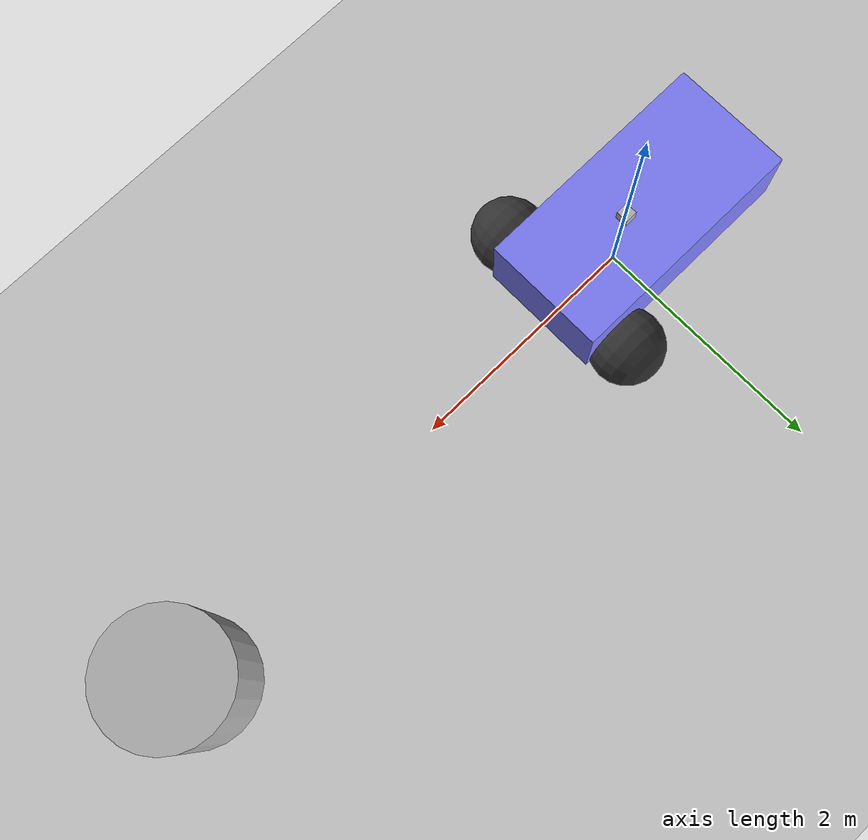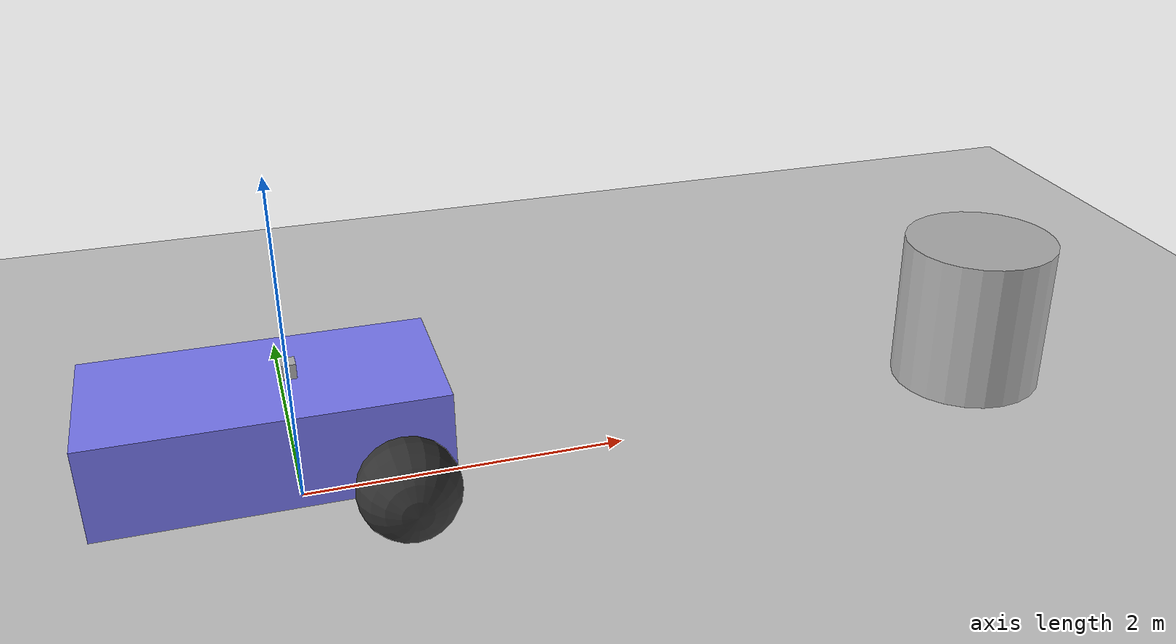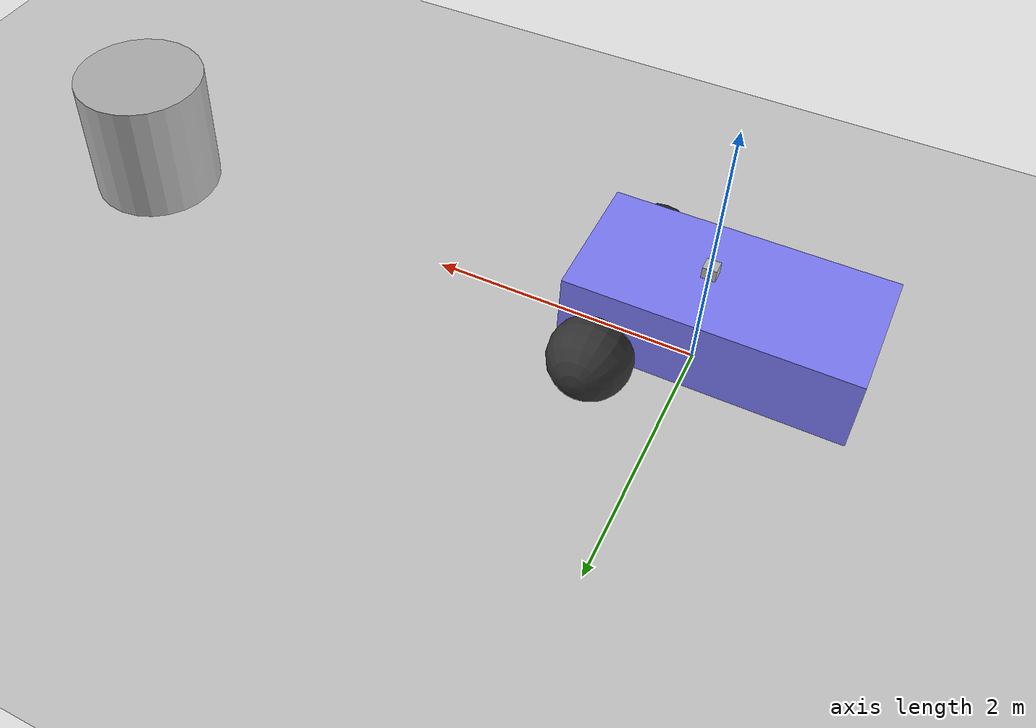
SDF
<sdf version='1.10'>
  <world name='demo'>
    <plugin name='gz::sim::systems::Physics' filename='gz-sim-physics-system'/>
    <plugin name='gz::sim::systems::Sensors' filename='gz-sim-sensors-system'>
      <render_engine>ogre2</render_engine>
    </plugin>
    <plugin name='gz::sim::systems::SceneBroadcaster' filename='gz-sim-scene-broadcaster-system'/>
    <plugin name='gz::sim::systems::UserCommands' filename='gz-sim-user-commands-system'/>
    <plugin name='ros_gz_example_gazebo::BasicSystem' filename='BasicSystem'/>
    <plugin name='ros_gz_example_gazebo::FullSystem' filename='FullSystem'/>
    <gravity>0 0 -9.8000000000000007</gravity>
    <magnetic_field>5.5644999999999998e-06 2.2875799999999999e-05 -4.2388400000000002e-05</magnetic_field>
    <atmosphere type='adiabatic'/>
    <physics type='ode'>
      <max_step_size>0.001</max_step_size>
      <real_time_factor>1</real_time_factor>
      <real_time_update_rate>1000</real_time_update_rate>
    </physics>
    <scene>
      <ambient>0.400000006 0.400000006 0.400000006 1</ambient>
      <background>0.699999988 0.699999988 0.699999988 1</background>
      <shadows>true</shadows>
    </scene>
    <model name='ground_plane'>
      <static>true</static>
      <link name='link'>
        <collision name='collision'>
          <geometry>
            <plane>
              <normal>0 0 1</normal>
              <size>100 100</size>
            </plane>
          </geometry>
          <surface>
            <friction>
              <ode/>
            </friction>
            <bounce/>
            <contact/>
          </surface>
        </collision>
        <visual name='visual'>
          <geometry>
            <plane>
              <normal>0 0 1</normal>
              <size>100 100</size>
            </plane>
          </geometry>
          <material>
            <ambient>0.800000012 0.800000012 0.800000012 1</ambient>
            <diffuse>0.800000012 0.800000012 0.800000012 1</diffuse>
            <specular>0.800000012 0.800000012 0.800000012 1</specular>
          </material>
        </visual>
        <pose>0 0 0 0 0 0</pose>
        <inertial>
          <pose>0 0 0 0 0 0</pose>
          <mass>1</mass>
          <inertia>
            <ixx>1</ixx>
            <ixy>0</ixy>
            <ixz>0</ixz>
            <iyy>1</iyy>
            <iyz>0</iyz>
            <izz>1</izz>
          </inertia>
        </inertial>
        <enable_wind>false</enable_wind>
      </link>
      <pose>0 0 0 0 0 0</pose>
      <self_collide>false</self_collide>
    </model>
    <model name='diff_drive'>
      <self_collide>true</self_collide>
      <pose>0 0 0.34999999999999992 0 0 0</pose>
      <frame name='_merged__diff_drive__model__' attached_to='chassis'>
        <pose relative_to='__model__'>0 0 0 0 0 0</pose>
      </frame>
      <link name='chassis'>
        <pose>-0.15142700000000001 0 0.17499999999999999 0 0 0</pose>
        <inertial>
          <mass>1.14395</mass>
          <inertia>
            <ixx>0.126164</ixx>
            <ixy>0</ixy>
            <ixz>0</ixz>
            <iyy>0.41651899999999997</iyy>
            <iyz>0</iyz>
            <izz>0.481014</izz>
          </inertia>
          <pose>0 0 0 0 0 0</pose>
        </inertial>
        <visual name='visual_chassis'>
          <geometry>
            <box>
              <size>2.0114200000000002 1 0.56872599999999995</size>
            </box>
          </geometry>
          <material>
            <ambient>0.5 0.5 1 1</ambient>
            <diffuse>0.5 0.5 1 1</diffuse>
            <specular>0 0 1 1</specular>
          </material>
        </visual>
        <collision name='collision_chassis'>
          <geometry>
            <box>
              <size>2.0114200000000002 1 0.56872599999999995</size>
            </box>
          </geometry>
          <surface>
            <friction>
              <ode/>
            </friction>
            <bounce/>
            <contact/>
          </surface>
        </collision>
        <enable_wind>false</enable_wind>
      </link>
      <link name='left_wheel'>
        <pose>0.55428299999999997 0.62502899999999995 -0.024999999999999967 -1.5706999999999995 0 0</pose>
        <inertial>
          <mass>2</mass>
          <inertia>
            <ixx>0.14583299999999999</ixx>
            <ixy>0</ixy>
            <ixz>0</ixz>
            <iyy>0.14583299999999999</iyy>
            <iyz>0</iyz>
            <izz>0.125</izz>
          </inertia>
          <pose>0 0 0 0 0 0</pose>
        </inertial>
        <visual name='visual_left_wheel'>
          <geometry>
            <sphere>
              <radius>0.29999999999999999</radius>
            </sphere>
          </geometry>
          <material>
            <ambient>0.200000003 0.200000003 0.200000003 1</ambient>
            <diffuse>0.200000003 0.200000003 0.200000003 1</diffuse>
            <specular>0.200000003 0.200000003 0.200000003 1</specular>
          </material>
        </visual>
        <collision name='collision_left_wheel'>
          <geometry>
            <sphere>
              <radius>0.29999999999999999</radius>
            </sphere>
          </geometry>
          <surface>
            <friction>
              <ode/>
            </friction>
            <bounce/>
            <contact/>
          </surface>
        </collision>
        <enable_wind>false</enable_wind>
      </link>
      <link name='right_wheel'>
        <pose>0.55428200000000005 -0.62502899999999995 -0.024999999999999967 -1.5706999999999995 0 0</pose>
        <inertial>
          <mass>2</mass>
          <inertia>
            <ixx>0.14583299999999999</ixx>
            <ixy>0</ixy>
            <ixz>0</ixz>
            <iyy>0.14583299999999999</iyy>
            <iyz>0</iyz>
            <izz>0.125</izz>
          </inertia>
          <pose>0 0 0 0 0 0</pose>
        </inertial>
        <visual name='visual_right_wheel'>
          <geometry>
            <sphere>
              <radius>0.29999999999999999</radius>
            </sphere>
          </geometry>
          <material>
            <ambient>0.200000003 0.200000003 0.200000003 1</ambient>
            <diffuse>0.200000003 0.200000003 0.200000003 1</diffuse>
            <specular>0.200000003 0.200000003 0.200000003 1</specular>
          </material>
        </visual>
        <collision name='collision_right_wheel'>
          <geometry>
            <sphere>
              <radius>0.29999999999999999</radius>
            </sphere>
          </geometry>
          <surface>
            <friction>
              <ode/>
            </friction>
            <bounce/>
            <contact/>
          </surface>
        </collision>
        <enable_wind>false</enable_wind>
      </link>
      <link name='caster'>
        <pose>-0.95713800000000004 0 -0.12499999999999994 0 0 0</pose>
        <inertial>
          <mass>1</mass>
          <inertia>
            <ixx>0.10000000000000001</ixx>
            <ixy>0</ixy>
            <ixz>0</ixz>
            <iyy>0.10000000000000001</iyy>
            <iyz>0</iyz>
            <izz>0.10000000000000001</izz>
          </inertia>
          <pose>0 0 0 0 0 0</pose>
        </inertial>
        <visual name='visual_caster'>
          <geometry>
            <sphere>
              <radius>0.20000000000000001</radius>
            </sphere>
          </geometry>
          <material>
            <ambient>0.200000003 0.200000003 0.200000003 1</ambient>
            <diffuse>0.200000003 0.200000003 0.200000003 1</diffuse>
            <specular>0.200000003 0.200000003 0.200000003 1</specular>
          </material>
        </visual>
        <collision name='collision_caster'>
          <geometry>
            <sphere>
              <radius>0.20000000000000001</radius>
            </sphere>
          </geometry>
          <surface>
            <friction>
              <ode/>
            </friction>
            <bounce/>
            <contact/>
          </surface>
        </collision>
        <enable_wind>false</enable_wind>
      </link>
      <link name='lidar_link'>
        <pose>0 0 0.5 0 0 0</pose>
        <inertial>
          <mass>0.10000000000000001</mass>
          <inertia>
            <ixx>0.00016666700000000001</ixx>
            <iyy>0.00016666700000000001</iyy>
            <izz>0.00016666700000000001</izz>
            <ixy>0</ixy>
            <ixz>0</ixz>
            <iyz>0</iyz>
          </inertia>
          <pose>0 0 0 0 0 0</pose>
        </inertial>
        <collision name='collision'>
          <geometry>
            <box>
              <size>0.10000000000000001 0.10000000000000001 0.10000000000000001</size>
            </box>
          </geometry>
          <surface>
            <friction>
              <ode/>
            </friction>
            <bounce/>
            <contact/>
          </surface>
        </collision>
        <visual name='visual'>
          <geometry>
            <box>
              <size>0.10000000000000001 0.10000000000000001 0.10000000000000001</size>
            </box>
          </geometry>
        </visual>
        <sensor name='gpu_lidar' type='gpu_lidar'>
          <pose>0 0 0 0 0 0</pose>
          <topic>scan</topic>
          <update_rate>10</update_rate>
          <enable_metrics>false</enable_metrics>
          <lidar>
            <scan>
              <horizontal>
                <samples>640</samples>
                <resolution>1</resolution>
                <min_angle>-1.396263</min_angle>
                <max_angle>1.396263</max_angle>
              </horizontal>
              <vertical>
                <samples>1</samples>
                <min_angle>0</min_angle>
                <max_angle>0</max_angle>
                <resolution>1</resolution>
              </vertical>
            </scan>
            <range>
              <min>0.080000000000000002</min>
              <max>10</max>
              <resolution>0.01</resolution>
            </range>
            <noise>
              <type>none</type>
              <mean>0</mean>
              <stddev>0</stddev>
            </noise>
            <visibility_mask>4294967295</visibility_mask>
          </lidar>
        </sensor>
        <enable_wind>false</enable_wind>
      </link>
      <joint name='lidar_joint' type='fixed'>
        <parent>chassis</parent>
        <child>lidar_link</child>
        <pose>0 0 0 0 0 0</pose>
      </joint>
      <joint name='left_wheel_joint' type='revolute'>
        <parent>chassis</parent>
        <child>left_wheel</child>
        <axis>
          <xyz>0 0 1</xyz>
          <limit>
            <lower>-1.7976900000000001e+308</lower>
            <upper>1.7976900000000001e+308</upper>
            <effort>inf</effort>
            <velocity>inf</velocity>
            <stiffness>100000000</stiffness>
            <dissipation>1</dissipation>
          </limit>
          <dynamics>
            <spring_reference>0</spring_reference>
            <spring_stiffness>0</spring_stiffness>
            <damping>0</damping>
            <friction>0</friction>
          </dynamics>
        </axis>
        <pose>0 0 1.1102230246251565e-16 0 0 0</pose>
      </joint>
      <joint name='right_wheel_joint' type='revolute'>
        <parent>chassis</parent>
        <child>right_wheel</child>
        <axis>
          <xyz>0 0 1</xyz>
          <limit>
            <lower>-1.7976900000000001e+308</lower>
            <upper>1.7976900000000001e+308</upper>
            <effort>inf</effort>
            <velocity>inf</velocity>
            <stiffness>100000000</stiffness>
            <dissipation>1</dissipation>
          </limit>
          <dynamics>
            <spring_reference>0</spring_reference>
            <spring_stiffness>0</spring_stiffness>
            <damping>0</damping>
            <friction>0</friction>
          </dynamics>
        </axis>
        <pose>-1.1102230246251565e-16 0 0 0 0 0</pose>
      </joint>
      <joint name='caster_wheel' type='ball'>
        <parent>chassis</parent>
        <child>caster</child>
        <pose>0 0 0 0 0 0</pose>
      </joint>
      <plugin name='ignition::gazebo::systems::DiffDrive' filename='ignition-gazebo-diff-drive-system'>
        <left_joint>left_wheel_joint</left_joint>
        <right_joint>right_wheel_joint</right_joint>
        <wheel_separation>1.25</wheel_separation>
        <wheel_radius>0.3</wheel_radius>
        <odom_publish_frequency>1</odom_publish_frequency>
        <max_linear_acceleration>1</max_linear_acceleration>
        <min_linear_acceleration>-1</min_linear_acceleration>
        <max_angular_acceleration>2</max_angular_acceleration>
        <min_angular_acceleration>-2</min_angular_acceleration>
        <max_linear_velocity>0.5</max_linear_velocity>
        <min_linear_velocity>-0.5</min_linear_velocity>
        <max_angular_velocity>1</max_angular_velocity>
        <min_angular_velocity>-1</min_angular_velocity>
      </plugin>
      <plugin name='gz::sim::systems::JointStatePublisher' filename='gz-sim-joint-state-publisher-system'/>
      <plugin name='gz::sim::systems::PosePublisher' filename='gz-sim-pose-publisher-system'>
        <publish_link_pose>true</publish_link_pose>
        <use_pose_vector_msg>true</use_pose_vector_msg>
        <static_publisher>true</static_publisher>
        <static_update_frequency>1</static_update_frequency>
      </plugin>
      <plugin name='gz::sim::systems::OdometryPublisher' filename='gz-sim-odometry-publisher-system'>
        <odom_frame>diff_drive/odom</odom_frame>
        <robot_base_frame>diff_drive</robot_base_frame>
      </plugin>
      <static>false</static>
    </model>
    <model name='cylinder'>
      <pose>4.5496012166222668 0.14389466798511158 0.5 0 0 0</pose>
      <link name='cylinder_link'>
        <inertial>
          <inertia>
            <ixx>0.14580000000000001</ixx>
            <ixy>0</ixy>
            <ixz>0</ixz>
            <iyy>0.14580000000000001</iyy>
            <iyz>0</iyz>
            <izz>0.125</izz>
          </inertia>
          <mass>1</mass>
          <pose>0 0 0 0 0 0</pose>
        </inertial>
        <collision name='cylinder_collision'>
          <geometry>
            <cylinder>
              <radius>0.5</radius>
              <length>1</length>
            </cylinder>
          </geometry>
          <surface>
            <friction>
              <ode/>
            </friction>
            <bounce/>
            <contact/>
          </surface>
        </collision>
        <visual name='cylinder_visual'>
          <geometry>
            <cylinder>
              <radius>0.5</radius>
              <length>1</length>
            </cylinder>
          </geometry>
          <material>
            <ambient>0.300000012 0.300000012 0.300000012 1</ambient>
            <diffuse>0.699999988 0.699999988 0.699999988 1</diffuse>
            <specular>1 1 1 1</specular>
          </material>
        </visual>
        <pose>0 0 0 0 0 0</pose>
        <enable_wind>false</enable_wind>
      </link>
      <static>false</static>
      <self_collide>false</self_collide>
    </model>
    <light name='sun' type='directional'>
      <pose>0 0 10 0 0 0</pose>
      <cast_shadows>true</cast_shadows>
      <intensity>1</intensity>
      <direction>-0.5 0.10000000000000001 -0.90000000000000002</direction>
      <diffuse>0.800000012 0.800000012 0.800000012 1</diffuse>
      <specular>0.200000003 0.200000003 0.200000003 1</specular>
      <attenuation>
        <range>1000</range>
        <linear>0.01</linear>
        <constant>0.90000000000000002</constant>
        <quadratic>0.001</quadratic>
      </attenuation>
      <spot>
        <inner_angle>0</inner_angle>
        <outer_angle>0</outer_angle>
        <falloff>0</falloff>
      </spot>
    </light>
  </world>
</sdf>
